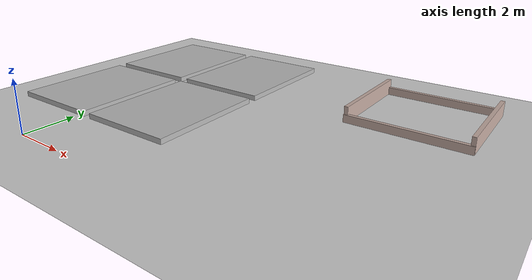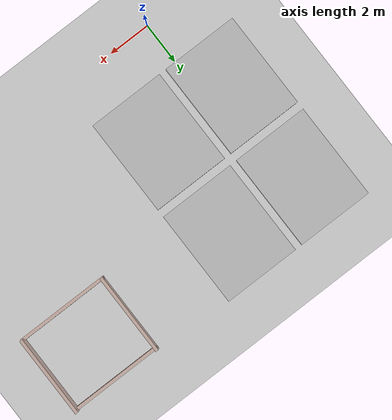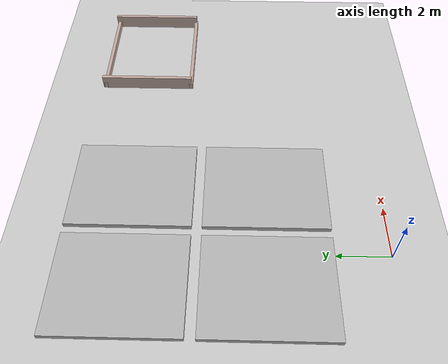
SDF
<sdf version="1.7">
 <world name="default">
  <model name="ground_plane">
   <static>1</static>
   <link name="link">
    <collision name="collision">
     <geometry><plane><normal>0 0 1</normal><size>100 100</size></plane></geometry>
     <surface><friction><ode><mu>100</mu><mu2>50</mu2></ode></friction></surface>
    </collision>
    <visual name="visual">
     <cast_shadows>0</cast_shadows>
     <geometry><plane><normal>0 0 1</normal><size>100 100</size></plane></geometry>
     <material>
      <script><uri>file://media/materials/scripts/gazebo.material</uri><name>Gazebo/Grey</name></script>
     </material>
    </visual>
   </link>
  </model>
  <model name="Lence">
   <pose>6.3475 5.72583 0 0 -0 0</pose>
   <link name="Wall_12">
    <collision name="Wall_12_Collision">
     <geometry><box><size>3.94165 0.15 0.6</size></box></geometry>
     <pose>0 0 0.3 0 -0 0</pose>
    </collision>
    <visual name="Wall_12_Visual">
     <pose>0 0 0.3 0 -0 0</pose>
     <geometry><box><size>3.94165 0.15 0.6</size></box></geometry>
     <material>
      <script><uri>file://media/materials/scripts/gazebo.material</uri><name>Gazebo/Grey</name></script>
      <ambient>0.760784 0.662745 0.627451 1</ambient>
     </material>
     <meta><layer>0</layer></meta>
    </visual>
    <pose>1.9225 3.755 0 0 -0 -1.5708</pose>
   </link>
   <link name="Wall_17">
    <collision name="Wall_17_Collision">
     <geometry><box><size>4.5 0.15 0.3</size></box></geometry>
     <pose>0 0 0.15 0 -0 0</pose>
    </collision>
    <visual name="Wall_17_Visual">
     <pose>0 0 0.15 0 -0 0</pose>
     <geometry><box><size>4.5 0.15 0.3</size></box></geometry>
     <material>
      <script><uri>file://media/materials/scripts/gazebo.material</uri><name>Gazebo/Grey</name></script>
      <ambient>0.760784 0.662745 0.627451 1</ambient>
     </material>
     <meta><layer>0</layer></meta>
    </visual>
    <pose>4.0975 5.61014 0 0 -0 0</pose>
   </link>
   <link name="Wall_18">
    <collision name="Wall_18_Collision">
     <geometry><box><size>3.94165 0.15 0.6</size></box></geometry>
     <pose>0 0 0.3 0 -0 0</pose>
    </collision>
    <visual name="Wall_18_Visual">
     <pose>0 0 0.3 0 -0 0</pose>
     <geometry><box><size>3.94165 0.15 0.6</size></box></geometry>
     <material>
      <script><uri>file://media/materials/scripts/gazebo.material</uri><name>Gazebo/Grey</name></script>
      <ambient>0.760784 0.662745 0.627451 1</ambient>
     </material>
     <meta><layer>0</layer></meta>
    </visual>
    <pose>6.2725 3.755 0 0 -0 -1.5708</pose>
   </link>
   <link name="Wall_8">
    <collision name="Wall_8_Collision">
     <geometry><box><size>4.5 0.15 0.3</size></box></geometry>
     <pose>0 0 0.15 0 -0 0</pose>
    </collision>
    <visual name="Wall_8_Visual">
     <pose>0 0 0.15 0 -0 0</pose>
     <geometry><box><size>4.5 0.15 0.3</size></box></geometry>
     <material>
      <script><uri>file://media/materials/scripts/gazebo.material</uri><name>Gazebo/Grey</name></script>
      <ambient>0.760784 0.662745 0.627451 1</ambient>
     </material>
     <meta><layer>0</layer></meta>
    </visual>
    <pose>4.0905 1.81317 0 0 -0 3.14159</pose>
   </link>
   <static>1</static>
  </model>
  <model name="mud">
   <link name="link">
    <inertial>
     <inertia><ixx>0</ixx><ixy>0</ixy><ixz>0</ixz><iyy>0</iyy><iyz>0</iyz><izz>0</izz></inertia>
     <mass>0</mass>
    </inertial>
    <pose>0.047617 -0.019027 0 0 -0 0</pose>
    <visual name="visual_2">
     <pose>2 2.5 0 0 -0 0</pose>
     <cast_shadows>0</cast_shadows>
     <geometry><box><size>3.65677 4.62683 0.2</size></box></geometry>
     <material>
      <script>
       <uri>model://mud_box/materials/scripts</uri>
       <uri>model://mud_box/materials/textures</uri>
       <name>vrc/mud</name>
      </script>
      <shader type="pixel"/>
     </material>
    </visual>
    <visual name="visual_3">
     <pose>2 -2.5 0 0 -0 0</pose>
     <cast_shadows>0</cast_shadows>
     <geometry><box><size>3.65677 4.62683 0.2</size></box></geometry>
     <material>
      <script>
       <uri>model://mud_box/materials/scripts</uri>
       <uri>model://mud_box/materials/textures</uri>
       <name>vrc/mud</name>
      </script>
      <shader type="pixel"/>
     </material>
    </visual>
    <visual name="visual_1">
     <pose>-2 2.5 0 0 -0 0</pose>
     <cast_shadows>0</cast_shadows>
     <geometry><box><size>3.65677 4.62683 0.2</size></box></geometry>
     <material>
      <script>
       <uri>model://mud_box/materials/scripts</uri>
       <uri>model://mud_box/materials/textures</uri>
       <name>vrc/mud</name>
      </script>
      <shader type="pixel"/>
     </material>
    </visual>
    <visual name="visual_4">
     <pose>-2 -2.5 0 0 -0 0</pose>
     <cast_shadows>0</cast_shadows>
     <geometry><box><size>3.65677 4.62683 0.2</size></box></geometry>
     <material>
      <script>
       <uri>model://mud_box/materials/scripts</uri>
       <uri>model://mud_box/materials/textures</uri>
       <name>vrc/mud</name>
      </script>
      <shader type="pixel"/>
     </material>
    </visual>
    <collision name="collision">
     <geometry><box><size>7.31354 9.25365 0.2</size></box></geometry>
     <surface>
      <friction>
       <ode><mu>1</mu><mu2>1</mu2><fdir1>0 0 0</fdir1><slip1>0</slip1><slip2>0</slip2></ode>
       <torsional>
        <coefficient>1</coefficient>
        <patch_radius>0</patch_radius>
        <surface_radius>0</surface_radius>
        <use_patch_radius>1</use_patch_radius>
        <ode><slip>0</slip></ode>
       </torsional>
      </friction>
      <bounce><restitution_coefficient>0</restitution_coefficient><threshold>1e+06</threshold></bounce>
      <contact>
       <collide_without_contact>0</collide_without_contact>
       <collide_without_contact_bitmask>1</collide_without_contact_bitmask>
       <collide_bitmask>1</collide_bitmask>
       <ode>
        <soft_cfm>0</soft_cfm>
        <soft_erp>0.2</soft_erp>
        <kp>1e+13</kp>
        <kd>1</kd>
        <max_vel>0.01</max_vel>
        <min_depth>0</min_depth>
       </ode>
       <bullet>
        <split_impulse>1</split_impulse>
        <split_impulse_penetration_threshold>-0.01</split_impulse_penetration_threshold>
        <soft_cfm>0</soft_cfm>
        <soft_erp>0.2</soft_erp>
        <kp>1e+13</kp>
        <kd>1</kd>
       </bullet>
      </contact>
     </surface>
    </collision>
   </link>
   <static>1</static>
   <pose>0.67946 6.89035 0.238429 0 -0 0</pose>
  </model>
 </world>
</sdf>
